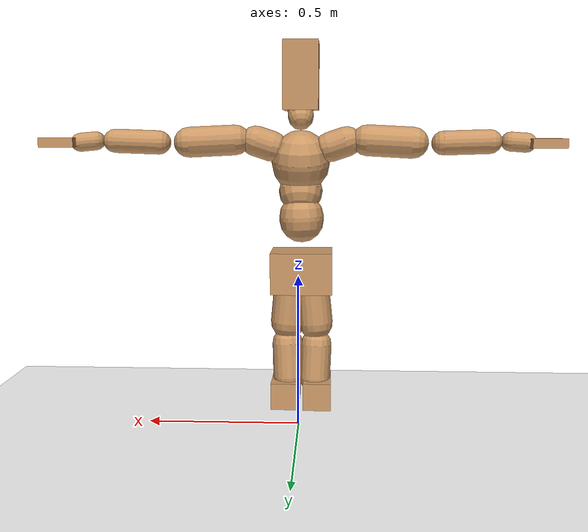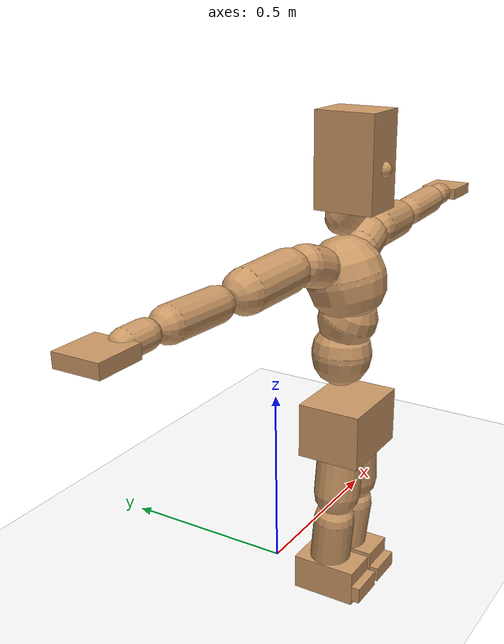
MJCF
<mujoco model="humanoid">
  <option integrator="implicitfast" />

  <visual>
    <global offwidth="1280" offheight="960" />
    <headlight active="1" ambient="0.34 0.34 0.34" diffuse="0.5 0.5 0.5" />
  </visual>

  <default>
    <joint damping="2" stiffness="2" armature="0.01" limited="true" solimplimit="0 .99 .01" />
    <geom condim="1" friction="0.7 0.005 0.0001" solimp=".99 .99 .003" solref="0.015 1" margin="0.001" rgba="0.8 0.6 .4 1" />
    <default class="smplcontact">
      <geom condim="3" friction="1. 0.005 0.0001" solref="0.015 1" solimp="0.98 0.98 0.001" priority="1" />
    </default>
    <default class="stiff_medium">
      <joint stiffness="10" />
    </default>
    <default class="stiff_medium_higher">
      <joint stiffness="50" />
    </default>
    <default class="stiff_high">
      <joint stiffness="100" />
    </default>
  </default>

  <asset>
    <texture type="skybox" builtin="gradient" rgb1="0.99 0.99 0.99" rgb2="0.608 0.828 0.892" width="100" />
    <texture builtin="flat" height="1278" mark="cross" markrgb="1 1 1" name="texgeom" random="0.01" rgb1="0.8 0.6 0.4" rgb2="0.8 0.6 0.4" type="cube" width="127" />
    <texture name="texplane" type="2d" builtin="checker" markrgb="1 1 1" rgb1="0.756 0.772 0.76" rgb2="0.6 0.6 0.6" width="100" height="100" />
    <material name="MatPlane" reflectance="0.5" texture="texplane" texrepeat="1 1" texuniform="true" />
    <material name="geom" texture="texgeom" texuniform="true" />
  </asset>

  <worldbody>
    <light name="tracking_light" pos="0 0 7" dir="0 0 -1" directional="true" cutoff="100" exponent="1" diffuse="1 1 1" specular="0.1 0.1 0.1" mode="trackcom" />
    <camera name="back" pos="0 3 2.4" xyaxes="-1 0 0 0 -1 2" mode="trackcom" />
    <camera name="side" pos="-3 0 2.4" xyaxes="0 -1 0 1 0 2" mode="trackcom" />
    <camera name="front_side" pos="-2.8 -2.8 0.8" xyaxes="0.5 -0.5 0 0.1 0.1 1" mode="trackcom" />
    <geom condim="3" name="floor" pos="0 0 0" rgba="1 1 1 1" size="100 100 .2" type="plane" material="MatPlane" />
    <body name="Pelvis" pos="-0.0018 -0.2233 0.49225" euler="90 0 0">
      <site name="Pelvis" size="0.01" />
      <freejoint name="Pelvis" />
      <geom type="box" pos="-0.0000 -0.0121 -0.0055" size="0.1069 0.0722 0.083" quat="1.0000 0.0000 0.0000 0.0000" density="3165.830099" name="Pelvis" />
      <body name="L_Hip" pos="0.03475 -0.0457 -0.0034">
        <joint name="L_Hip_x" type="hinge" pos="0 0 0" axis="1 0 0" stiffness="3.3345417441860463" range="-160.0 22.92" class="stiff_medium" damping="3.7426030205428686" armature="0.0018669335091027726"/>
        <joint name="L_Hip_y" type="hinge" pos="0 0 0" axis="0 1 0" stiffness="3.376582441860465" range="-70.0 70.0" class="stiff_medium" damping="4.004843708765265" armature="0.004750001934737157"/>
        <joint name="L_Hip_z" type="hinge" pos="0 0 0" axis="0 0 1" stiffness="3.367503488372093" range="-28.65 90.0" class="stiff_medium" damping="2.504100719628531" armature="0.0018620679787552065"/>
        <geom type="capsule" density="2040.816327" fromto="0.00345 -0.0375 -0.00045 0.0137 -0.1501 -0.0018" size="0.0615" name="L_Hip" />
        <body name="L_Knee" pos="0.01715 -0.1876 -0.00225">
          <joint name="L_Knee_x" type="hinge" pos="0 0 0" axis="1 0 0" range="-5.16 171.89" damping="2.2433259562220664" armature="0.002158215061835121" stiffness="0.7286853953488371"/>
          <joint name="L_Knee_y" type="hinge" pos="0 0 0" axis="0 1 0" range="-4.58 6.88" damping="3.446887645899606" armature="0.005422024016158547" stiffness="0.6847670265780731"/>
          <joint name="L_Knee_z" type="hinge" pos="0 0 0" axis="0 0 1" range="-6.88 4.58" damping="2.2380332629061432" armature="0.0021311895651193306" stiffness="0.7344479357696566"/>
          <geom type="capsule" density="1234.567901" fromto="-0.00135 -0.0398 -0.00435 -0.00545 -0.1592 -0.0175" size="0.0541" name="L_Knee" />
          <body name="L_Ankle" pos="-0.0068 -0.199 -0.02185">
            <joint name="L_Ankle_x" type="hinge" pos="0 0 0" axis="1 0 0" range="-45.84 45.84" class="stiff_medium" damping="3.0200432285450676" armature="0.005067033945711619" stiffness="5.0"/>
            <joint name="L_Ankle_y" type="hinge" pos="0 0 0" axis="0 1 0" range="-74.48 22.92" class="stiff_medium" damping="1.5371232923821343" armature="0.0052505511466304266" stiffness="5.0"/>
            <joint name="L_Ankle_z" type="hinge" pos="0 0 0" axis="0 0 1" range="-4.58 4.58" class="stiff_medium" damping="3.407863702828065" armature="0.006451963898362782" stiffness="5.0"/>
            <geom type="box" pos="0.01165 -0.01195 0.0121" size="0.0483 0.0464 0.085" quat="1.0000 0.0000 0.0000 0.0000" density="449.071558" name="L_Ankle" class="smplcontact" />
            <body name="L_Toe" pos="0.0132 -0.0279 0.05965">
              <joint name="L_Toe_x" type="hinge" pos="0 0 0" axis="1 0 0" range="-91.67 22.92" armature="0.007148590664291484" damping="1.1957082139294255" stiffness="1.0"/>
              <joint name="L_Toe_y" type="hinge" pos="0 0 0" axis="0 1 0" range="-4.58 4.58" armature="0.007990951927082678" damping="1.2641955487251706" stiffness="1.0"/>
              <joint name="L_Toe_z" type="hinge" pos="0 0 0" axis="0 0 1" range="-4.58 4.58" armature="0.009694161060559788" damping="1.392419553192197" stiffness="1.0"/>
              <geom type="box" pos="-0.0015 0.00275 0.0124" size="0.0478 0.02 0.0496" quat="1.0000 0.0000 0.0000 0.0000" density="423.206892" name="L_Toe" class="smplcontact" />
            </body>
          </body>
        </body>
      </body>
      <body name="R_Hip" pos="-0.03385 -0.04525 -0.00215">
        <joint name="R_Hip_x" type="hinge" pos="0 0 0" axis="1 0 0" stiffness="3.3345417441860463" range="-160.0 22.92" class="stiff_medium" damping="3.7426030205428686" armature="0.0018669335091027726"/>
        <joint name="R_Hip_y" type="hinge" pos="0 0 0" axis="0 1 0" stiffness="3.376582441860465" range="-70.0 70.0" class="stiff_medium" damping="4.004843708765265" armature="0.004750001934737157"/>
        <joint name="R_Hip_z" type="hinge" pos="0 0 0" axis="0 0 1" stiffness="3.367503488372093" range="-90.0 28.65" class="stiff_medium" damping="2.504100719628531" armature="0.0018620679787552065"/>
        <geom type="capsule" density="2040.816327" fromto="-0.00385 -0.03825 -0.0009 -0.0153 -0.15305 -0.00355" size="0.0606" name="R_Hip" />
        <body name="R_Knee" pos="-0.01915 -0.1913 -0.00445">
          <joint name="R_Knee_x" type="hinge" pos="0 0 0" axis="1 0 0" range="-5.16 171.89" damping="2.2433259562220664" armature="0.002158215061835121" stiffness="0.7286853953488371"/>
          <joint name="R_Knee_y" type="hinge" pos="0 0 0" axis="0 1 0" range="-6.88 4.58" damping="3.446887645899606" armature="0.005422024016158547" stiffness="0.6847670265780731"/>
          <joint name="R_Knee_z" type="hinge" pos="0 0 0" axis="0 0 1" range="-4.58 6.88" damping="2.2380332629061432" armature="0.0021311895651193306" stiffness="0.7344479357696566"/>
          <geom type="capsule" density="1234.567901" fromto="0.0016 -0.03985 -0.00425 0.0063 -0.15935 -0.0169" size="0.0541" name="R_Knee" />
          <body name="R_Ankle" pos="0.0079 -0.1992 -0.02115">
            <joint name="R_Ankle_x" type="hinge" pos="0 0 0" axis="1 0 0" range="-45.84 45.84" class="stiff_medium" damping="3.0200432285450676" armature="0.005067033945711619" stiffness="5.0"/>
            <joint name="R_Ankle_y" type="hinge" pos="0 0 0" axis="0 1 0" range="-22.92 74.48" class="stiff_medium" damping="1.5371232923821343" armature="0.0052505511466304266" stiffness="5.0"/>
            <joint name="R_Ankle_z" type="hinge" pos="0 0 0" axis="0 0 1" range="-4.58 4.58" class="stiff_medium" damping="3.407863702828065" armature="0.006451963898362782" stiffness="5.0"/>
            <geom type="box" pos="-0.0106 -0.0087 0.0128" size="0.0483 0.0478 0.0865" quat="1.0000 0.0000 0.0000 0.0000" density="434.700981" name="R_Ankle" class="smplcontact" />
            <body name="R_Toe" pos="-0.0127 -0.02405 0.06165">
              <joint name="R_Toe_x" type="hinge" pos="0 0 0" axis="1 0 0" range="-91.67 22.92" armature="0.007148590664291484" damping="1.1957082139294255" stiffness="1.0"/>
              <joint name="R_Toe_y" type="hinge" pos="0 0 0" axis="0 1 0" range="-4.58 4.58" armature="0.007990951927082678" damping="1.2641955487251706" stiffness="1.0"/>
              <joint name="R_Toe_z" type="hinge" pos="0 0 0" axis="0 0 1" range="-4.58 4.58" armature="0.009694161060559788" damping="1.392419553192197" stiffness="1.0"/>
              <geom type="box" pos="0.0021 0.00225 0.01135" size="0.0479 0.0216 0.0493" quat="1.0000 0.0000 0.0000 0.0000" density="407.384095" name="R_Toe" class="smplcontact" />
            </body>
          </body>
        </body>
      </body>
      <body name="Torso" pos="-0.0025 0.109 -0.0267">
        <joint name="Torso_x" type="hinge" pos="0 0 0" axis="1 0 0" range="-25.78 57.3" class="stiff_medium" damping="15.000000000000007" armature="0.01000000000000001" stiffness="10.0"/>
        <joint name="Torso_y" type="hinge" pos="0 0 0" axis="0 1 0" range="-57.3 57.3" class="stiff_high" damping="20.0" armature="0.010000000000000002" stiffness="100.0"/>
        <joint name="Torso_z" type="hinge" pos="0 0 0" axis="0 0 1" range="-34.38 34.38" class="stiff_high" damping="20.000000000000004" armature="0.010000000000000005" stiffness="100.0"/>
        <geom type="capsule" density="2040.816327" fromto="0.0025 0.0608 0.0005 0.003 0.0743 0.0006" size="0.0769" name="Torso" />
        <body name="Spine" pos="0.0055 0.1352 0.0011">
          <joint name="Spine_x" type="hinge" pos="0 0 0" axis="1 0 0" stiffness="10.0" range="-25.78 57.3" class="stiff_medium" damping="15.000000000000016" armature="0.010000000000000023"/>
          <joint name="Spine_y" type="hinge" pos="0 0 0" axis="0 1 0" stiffness="10.0" range="-57.3 57.3" class="stiff_high" damping="8.0" armature="0.010000000000000002"/>
          <joint name="Spine_z" type="hinge" pos="0 0 0" axis="0 0 1" stiffness="20.0" range="-34.38 34.38" class="stiff_high" damping="12.000000000000005" armature="0.01000000000000001"/>
          <geom type="capsule" density="2040.816327" fromto="0.0007 0.0238 0.0114 0.0008 0.0291 0.014" size="0.0755" name="Spine" />
          <body name="Chest" pos="0.0015 0.0529 0.0254">
            <joint name="Chest_x" type="hinge" pos="0 0 0" axis="1 0 0" stiffness="10.0" range="-25.78 57.3" class="stiff_medium" damping="15.00000000000001" armature="0.010000000000000014"/>
            <joint name="Chest_y" type="hinge" pos="0 0 0" axis="0 1 0" stiffness="10.0" range="-57.3 57.3" class="stiff_high" damping="8.0" armature="0.010000000000000002"/>
            <joint name="Chest_z" type="hinge" pos="0 0 0" axis="0 0 1" stiffness="20.0" range="-34.38 34.38" class="stiff_high" damping="12.000000000000004" armature="0.010000000000000005"/>
            <geom type="capsule" density="2040.816327" fromto="-0.0009 0.0682 -0.0173 -0.001 0.0833 -0.0212" size="0.1002" name="Chest" />
            <body name="Neck" pos="-0.0028 0.2139 -0.0429">
              <joint name="Neck_x" type="hinge" pos="0 0 0" axis="1 0 0" range="-28.65 57.3" class="stiff_medium_higher" damping="10.000000000000007" armature="0.010000000000000016" stiffness="50.0"/>
              <joint name="Neck_y" type="hinge" pos="0 0 0" axis="0 1 0" range="-40.11 40.11" class="stiff_medium_higher" damping="10.0" armature="0.01" stiffness="50.0"/>
              <joint name="Neck_z" type="hinge" pos="0 0 0" axis="0 0 1" range="-40.11 40.11" class="stiff_medium_higher" damping="9.999999999999998" armature="0.009999999999999998" stiffness="50.0"/>
              <geom type="capsule" density="1000" fromto="0.001 0.013 0.0103 0.0041 0.052 0.0411" size="0.0436" name="Neck" />
              <body name="Head" pos="0.0052 0.065 0.0513">
                <joint name="Head_x" type="hinge" pos="0 0 0" axis="1 0 0" range="-28.65 57.3" class="stiff_medium_higher" damping="2.000000000000001" armature="0.010000000000000009" stiffness="50.0"/>
                <joint name="Head_y" type="hinge" pos="0 0 0" axis="0 1 0" range="-40.11 40.11" class="stiff_medium_higher" damping="1.9999999999999998" armature="0.009999999999999998" stiffness="50.0"/>
                <joint name="Head_z" type="hinge" pos="0 0 0" axis="0 0 1" range="-40.11 40.11" class="stiff_medium_higher" damping="1.9999999999999993" armature="0.009999999999999993" stiffness="50.0"/>
                <geom type="box" pos="-0.0042 0.0876 -0.0116" size="0.0606 0.1154 0.076" quat="1.0000 0.0000 0.0000 0.0000" density="1018.069894" name="Head" />
                <geom type="capsule" name="nose" size="0.02 0.01" pos="0 0.07 0.05" quat="1 0 0 0" mass="0" contype="0" conaffinity="0" />
              </body>
            </body>
            <body name="L_Thorax" pos="0.0788 0.1217 -0.0341">
              <joint name="L_Thorax_x" type="hinge" pos="0 0 0" axis="1 0 0" range="-10.89 4.58" class="stiff_medium_higher" damping="19.99999999999996" armature="0.009999999999999962" stiffness="50.0"/>
              <joint name="L_Thorax_y" type="hinge" pos="0 0 0" axis="0 1 0" range="-28.65 17.19" class="stiff_medium_higher" damping="20.0" armature="0.010000000000000002" stiffness="50.0"/>
              <joint name="L_Thorax_z" type="hinge" pos="0 0 0" axis="0 0 1" range="-31.51 40.11" class="stiff_medium_higher" damping="19.999999999999996" armature="0.009999999999999998" stiffness="50.0"/>
              <geom type="capsule" density="1000" fromto="0.0182 0.0061 -0.0018 0.0728 0.0244 -0.0071" size="0.0521" name="L_Thorax" />
              <body name="L_Shoulder" pos="0.091 0.0305 -0.0089">
                <joint name="L_Shoulder_x" type="hinge" pos="0 0 0" axis="1 0 0" range="-97.4 97.4" class="stiff_medium" damping="6.000000000000035" armature="0.010000000000000118" stiffness="10.0"/>
                <joint name="L_Shoulder_y" type="hinge" pos="0 0 0" axis="0 1 0" range="-108.86 80.21" class="stiff_medium" damping="5.999999999999999" armature="0.009999999999999998" stiffness="10.0"/>
                <joint name="L_Shoulder_z" type="hinge" pos="0 0 0" axis="0 0 1" range="-97.4 85.94" class="stiff_medium" damping="6.000000000000002" armature="0.010000000000000005" stiffness="10.0"/>
                <geom type="capsule" density="1000" fromto="0.0519 -0.0026 -0.0055 0.2077 -0.0102 -0.022" size="0.0517" name="L_Shoulder" />
                <body name="L_Elbow" pos="0.2596 -0.0128 -0.0275">
                  <joint name="L_Elbow_x" type="hinge" pos="0 0 0" axis="1 0 0" range="-17.19 4.58" damping="4.999999999999957" armature="0.009999999999999828" stiffness="2.0"/>
                  <joint name="L_Elbow_y" type="hinge" pos="0 0 0" axis="0 1 0" range="-180.0 17.19" damping="5.000000000000005" armature="0.010000000000000023" stiffness="2.0"/>
                  <joint name="L_Elbow_z" type="hinge" pos="0 0 0" axis="0 0 1" range="-100.84 4.58" damping="5.000000000000002" armature="0.010000000000000009" stiffness="2.0"/>
                  <geom type="capsule" density="1000" fromto="0.0498 0.0018 -0.0002 0.1994 0.0072 -0.0009" size="0.0405" name="L_Elbow" />
                  <body name="L_Wrist" pos="0.2492 0.009 -0.0012">
                    <joint name="L_Wrist_x" type="hinge" pos="0 0 0" axis="1 0 0" range="-180.0 22.92" armature="0.009999999999999745" damping="1.9999999999999745" stiffness="2.0"/>
                    <joint name="L_Wrist_y" type="hinge" pos="0 0 0" axis="0 1 0" range="-17.19 17.19" armature="0.010000000000000061" damping="2.0000000000000058" stiffness="2.0"/>
                    <joint name="L_Wrist_z" type="hinge" pos="0 0 0" axis="0 0 1" range="-22.92 22.92" armature="0.010000000000000045" damping="2.0000000000000044" stiffness="2.0"/>
                    <geom type="capsule" density="1000" fromto="0.0168 -0.0016 -0.003 0.0672 -0.0065 -0.012" size="0.0318" name="L_Wrist" class="smplcontact" />
                    <body name="L_Hand" pos="0.084 -0.0082 -0.0149">
                      <joint name="L_Hand_x" type="hinge" pos="0 0 0" axis="1 0 0" range="-17.19 17.19" armature="0.009999999999999858" damping="1.9999999999999858" stiffness="2.0"/>
                      <joint name="L_Hand_y" type="hinge" pos="0 0 0" axis="0 1 0" range="-51.57 51.57" armature="0.010000000000000238" damping="2.0000000000000235" stiffness="2.0"/>
                      <joint name="L_Hand_z" type="hinge" pos="0 0 0" axis="0 0 1" range="-91.67 91.67" armature="0.010000000000000538" damping="2.0000000000000537" stiffness="2.0"/>
                      <geom type="box" pos="0.0493 0.001 -0.0058" size="0.0585 0.0158 0.0538" quat="1.0000 0.0000 0.0000 0.0000" density="400.552564" name="L_Hand" class="smplcontact" />
                    </body>
                  </body>
                </body>
              </body>
            </body>
            <body name="R_Thorax" pos="-0.0818 0.1188 -0.0386">
              <joint name="R_Thorax_x" type="hinge" pos="0 0 0" axis="1 0 0" range="-10.89 4.58" class="stiff_medium_higher" damping="19.99999999999996" armature="0.009999999999999962" stiffness="50.0"/>
              <joint name="R_Thorax_y" type="hinge" pos="0 0 0" axis="0 1 0" range="-17.19 28.65" class="stiff_medium_higher" damping="20.0" armature="0.010000000000000002" stiffness="50.0"/>
              <joint name="R_Thorax_z" type="hinge" pos="0 0 0" axis="0 0 1" range="-40.11 31.51" class="stiff_medium_higher" damping="19.999999999999996" armature="0.009999999999999998" stiffness="50.0"/>
              <geom type="capsule" density="1000" fromto="-0.0192 0.0065 -0.0018 -0.0768 0.026 -0.0073" size="0.0511" name="R_Thorax" />
              <body name="R_Shoulder" pos="-0.096 0.0326 -0.0091">
                <joint name="R_Shoulder_x" type="hinge" pos="0 0 0" axis="1 0 0" range="-97.4 97.4" class="stiff_medium" damping="6.000000000000035" armature="0.010000000000000118" stiffness="10.0"/>
                <joint name="R_Shoulder_y" type="hinge" pos="0 0 0" axis="0 1 0" range="-80.21 108.86" class="stiff_medium" damping="5.999999999999999" armature="0.009999999999999998" stiffness="10.0"/>
                <joint name="R_Shoulder_z" type="hinge" pos="0 0 0" axis="0 0 1" range="-85.94 97.4" class="stiff_medium" damping="6.000000000000002" armature="0.010000000000000005" stiffness="10.0"/>
                <geom type="capsule" density="1000" fromto="-0.0507 -0.0027 -0.0043 -0.203 -0.0107 -0.0171" size="0.0531" name="R_Shoulder" />
                <body name="R_Elbow" pos="-0.2537 -0.0133 -0.0214">
                  <joint name="R_Elbow_x" type="hinge" pos="0 0 0" axis="1 0 0" range="-17.19 4.58" damping="4.999999999999957" armature="0.009999999999999828" stiffness="2.0"/>
                  <joint name="R_Elbow_y" type="hinge" pos="0 0 0" axis="0 1 0" range="-17.19 180.0" damping="5.000000000000005" armature="0.010000000000000023" stiffness="2.0"/>
                  <joint name="R_Elbow_z" type="hinge" pos="0 0 0" axis="0 0 1" range="-4.58 100.84" damping="5.000000000000002" armature="0.010000000000000009" stiffness="2.0"/>
                  <geom type="capsule" density="1000" fromto="-0.0511 0.0016 -0.0011 -0.2042 0.0062 -0.0044" size="0.0408" name="R_Elbow" />
                  <body name="R_Wrist" pos="-0.2553 0.0078 -0.0056">
                    <joint name="R_Wrist_x" type="hinge" pos="0 0 0" axis="1 0 0" range="-180.0 22.92" armature="0.009999999999999745" damping="1.9999999999999745" stiffness="2.0"/>
                    <joint name="R_Wrist_y" type="hinge" pos="0 0 0" axis="0 1 0" range="-17.19 17.19" armature="0.010000000000000061" damping="2.0000000000000058" stiffness="2.0"/>
                    <joint name="R_Wrist_z" type="hinge" pos="0 0 0" axis="0 0 1" range="-22.92 22.92" armature="0.010000000000000045" damping="2.0000000000000044" stiffness="2.0"/>
                    <geom type="capsule" density="1000" fromto="-0.0169 -0.0012 -0.0021 -0.0677 -0.0049 -0.0083" size="0.0326" name="R_Wrist" class="smplcontact" />
                    <body name="R_Hand" pos="-0.0846 -0.0061 -0.0103">
                      <joint name="R_Hand_x" type="hinge" pos="0 0 0" axis="1 0 0" range="-17.19 17.19" armature="0.009999999999999858" damping="1.9999999999999858" stiffness="2.0"/>
                      <joint name="R_Hand_y" type="hinge" pos="0 0 0" axis="0 1 0" range="-51.57 51.57" armature="0.010000000000000238" damping="2.0000000000000235" stiffness="2.0"/>
                      <joint name="R_Hand_z" type="hinge" pos="0 0 0" axis="0 0 1" range="-91.67 91.67" armature="0.010000000000000538" damping="2.0000000000000537" stiffness="2.0"/>
                      <geom type="box" pos="-0.0462 -0.0009 -0.0079" size="0.0569 0.0164 0.0546" quat="1.0000 0.0000 0.0000 0.0000" density="403.679611" name="R_Hand" class="smplcontact" />
                    </body>
                  </body>
                </body>
              </body>
            </body>
          </body>
        </body>
      </body>
    </body>
  </worldbody>
  <actuator>
    <general name="L_Hip_x" joint="L_Hip_x" biastype="affine" gainprm="95.81140930921741" biasprm="-71.80094023675663 -60.021751395348836 -0.4990137360723825" ctrllimited="true" ctrlrange="-1 1" forcerange="-120.04350279069767 120.04350279069767" />
    <general name="L_Hip_y" joint="L_Hip_y" biastype="affine" gainprm="74.25492615512385" biasprm="0.0 -60.77848395348837 -0.800968741753053" ctrllimited="true" ctrlrange="-1 1" forcerange="-121.55696790697674 121.55696790697674" />
    <general name="L_Hip_z" joint="L_Hip_z" biastype="affine" gainprm="62.7618409351961" biasprm="32.45207704487383 -60.61506279069768 -0.5008201439257063" ctrllimited="true" ctrlrange="-1 1" forcerange="-121.23012558139536 121.23012558139536" />
    <general name="L_Knee_x" joint="L_Knee_x" biastype="affine" gainprm="101.32716171122915" biasprm="95.42094138442945 -65.58168558139535 -0.5608314890555166" ctrllimited="true" ctrlrange="-1 1" forcerange="-131.1633711627907 131.1633711627907" />
    <general name="L_Knee_y" joint="L_Knee_y" biastype="affine" gainprm="6.163357207238645" biasprm="1.2369739595679656 -61.62903239202658 -0.8617219114749015" ctrllimited="true" ctrlrange="-1 1" forcerange="-123.25806478405316 123.25806478405316" />
    <general name="L_Knee_z" joint="L_Knee_z" biastype="affine" gainprm="6.6105183260475755" biasprm="-1.3267183376884313 -66.1003142192691 -0.5595083157265358" ctrllimited="true" ctrlrange="-1 1" forcerange="-132.2006284385382 132.2006284385382" />
    <general name="L_Ankle_x" joint="L_Ankle_x" biastype="affine" gainprm="36.002651810139035" biasprm="0.0 -45.0 -1.0066810761816891" ctrllimited="true" ctrlrange="-1 1" forcerange="-90.0 90.0" />
    <general name="L_Ankle_y" joint="L_Ankle_y" biastype="affine" gainprm="38.24889055745574" biasprm="-20.24756465238622 -45.0 -1.0247488615880895" ctrllimited="true" ctrlrange="-1 1" forcerange="-90.0 90.0" />
    <general name="L_Ankle_z" joint="L_Ankle_z" biastype="affine" gainprm="3.5971235883603128" biasprm="0.0 -45.0 -1.135954567609355" ctrllimited="true" ctrlrange="-1 1" forcerange="-90.0 90.0" />
    <general name="L_Toe_x" joint="L_Toe_x" biastype="affine" gainprm="35.99951021748544" biasprm="-21.598449493429825 -36.0 -0.47828328557177024" ctrllimited="true" ctrlrange="-1 1" forcerange="-72.0 72.0" />
    <general name="L_Toe_y" joint="L_Toe_y" biastype="affine" gainprm="2.8776988706882505" biasprm="0.0 -36.0 -0.5056782194900683" ctrllimited="true" ctrlrange="-1 1" forcerange="-72.0 72.0" />
    <general name="L_Toe_z" joint="L_Toe_z" biastype="affine" gainprm="2.8776988706882505" biasprm="0.0 -36.0 -0.5569678212768788" ctrllimited="true" ctrlrange="-1 1" forcerange="-72.0 72.0" />
    <general name="R_Hip_x" joint="R_Hip_x" biastype="affine" gainprm="95.81140930921741" biasprm="-71.80094023675663 -60.021751395348836 -0.4990137360723825" ctrllimited="true" ctrlrange="-1 1" forcerange="-120.04350279069767 120.04350279069767" />
    <general name="R_Hip_y" joint="R_Hip_y" biastype="affine" gainprm="74.25492615512385" biasprm="0.0 -60.77848395348837 -0.800968741753053" ctrllimited="true" ctrlrange="-1 1" forcerange="-121.55696790697674 121.55696790697674" />
    <general name="R_Hip_z" joint="R_Hip_z" biastype="affine" gainprm="62.7618409351961" biasprm="-32.45207704487383 -60.61506279069768 -0.5008201439257063" ctrllimited="true" ctrlrange="-1 1" forcerange="-121.23012558139536 121.23012558139536" />
    <general name="R_Knee_x" joint="R_Knee_x" biastype="affine" gainprm="101.32716171122915" biasprm="95.42094138442945 -65.58168558139535 -0.5608314890555166" ctrllimited="true" ctrlrange="-1 1" forcerange="-131.1633711627907 131.1633711627907" />
    <general name="R_Knee_y" joint="R_Knee_y" biastype="affine" gainprm="6.163357207238645" biasprm="-1.2369739595679656 -61.62903239202658 -0.8617219114749015" ctrllimited="true" ctrlrange="-1 1" forcerange="-123.25806478405316 123.25806478405316" />
    <general name="R_Knee_z" joint="R_Knee_z" biastype="affine" gainprm="6.6105183260475755" biasprm="1.3267183376884313 -66.1003142192691 -0.5595083157265358" ctrllimited="true" ctrlrange="-1 1" forcerange="-132.2006284385382 132.2006284385382" />
    <general name="R_Ankle_x" joint="R_Ankle_x" biastype="affine" gainprm="36.002651810139035" biasprm="0.0 -45.0 -1.0066810761816891" ctrllimited="true" ctrlrange="-1 1" forcerange="-90.0 90.0" />
    <general name="R_Ankle_y" joint="R_Ankle_y" biastype="affine" gainprm="38.24889055745574" biasprm="20.24756465238622 -45.0 -1.0247488615880895" ctrllimited="true" ctrlrange="-1 1" forcerange="-90.0 90.0" />
    <general name="R_Ankle_z" joint="R_Ankle_z" biastype="affine" gainprm="3.5971235883603128" biasprm="0.0 -45.0 -1.135954567609355" ctrllimited="true" ctrlrange="-1 1" forcerange="-90.0 90.0" />
    <general name="R_Toe_x" joint="R_Toe_x" biastype="affine" gainprm="35.99951021748544" biasprm="-21.598449493429825 -36.0 -0.47828328557177024" ctrllimited="true" ctrlrange="-1 1" forcerange="-72.0 72.0" />
    <general name="R_Toe_y" joint="R_Toe_y" biastype="affine" gainprm="2.8776988706882505" biasprm="0.0 -36.0 -0.5056782194900683" ctrllimited="true" ctrlrange="-1 1" forcerange="-72.0 72.0" />
    <general name="R_Toe_z" joint="R_Toe_z" biastype="affine" gainprm="2.8776988706882505" biasprm="0.0 -36.0 -0.5569678212768788" ctrllimited="true" ctrlrange="-1 1" forcerange="-72.0 72.0" />
    <general name="Torso_x" joint="Torso_x" biastype="affine" gainprm="174.00234510682668" biasprm="66.0153336274335 -240.0 -4.000000000000002" ctrllimited="true" ctrlrange="-1 1" forcerange="-360.0 360.0" />
    <general name="Torso_y" joint="Torso_y" biastype="affine" gainprm="240.0176787342602" biasprm="0.0 -240.0 -4.0" ctrllimited="true" ctrlrange="-1 1" forcerange="-360.0 360.0" />
    <general name="Torso_z" joint="Torso_z" biastype="affine" gainprm="144.01060724055614" biasprm="0.0 -240.0 -4.000000000000001" ctrllimited="true" ctrlrange="-1 1" forcerange="-360.0 360.0" />
    <general name="Spine_x" joint="Spine_x" biastype="affine" gainprm="174.00234510682668" biasprm="66.0153336274335 -240.0 -4.000000000000004" ctrllimited="true" ctrlrange="-1 1" forcerange="-360.0 360.0" />
    <general name="Spine_y" joint="Spine_y" biastype="affine" gainprm="240.0176787342602" biasprm="0.0 -240.0 -4.0" ctrllimited="true" ctrlrange="-1 1" forcerange="-360.0 360.0" />
    <general name="Spine_z" joint="Spine_z" biastype="affine" gainprm="144.01060724055614" biasprm="0.0 -240.0 -4.000000000000002" ctrllimited="true" ctrlrange="-1 1" forcerange="-360.0 360.0" />
    <general name="Chest_x" joint="Chest_x" biastype="affine" gainprm="174.00234510682668" biasprm="66.0153336274335 -240.0 -4.000000000000003" ctrllimited="true" ctrlrange="-1 1" forcerange="-360.0 360.0" />
    <general name="Chest_y" joint="Chest_y" biastype="affine" gainprm="240.0176787342602" biasprm="0.0 -240.0 -4.0" ctrllimited="true" ctrlrange="-1 1" forcerange="-360.0 360.0" />
    <general name="Chest_z" joint="Chest_z" biastype="affine" gainprm="144.01060724055614" biasprm="0.0 -240.0 -4.000000000000001" ctrllimited="true" ctrlrange="-1 1" forcerange="-360.0 360.0" />
    <general name="Neck_x" joint="Neck_x" biastype="affine" gainprm="27.00198885760427" biasprm="9.000662952534757 -36.0 -0.8000000000000006" ctrllimited="true" ctrlrange="-1 1" forcerange="-72.0 72.0" />
    <general name="Neck_y" joint="Neck_y" biastype="affine" gainprm="25.20185626709732" biasprm="0.0 -36.0 -0.8" ctrllimited="true" ctrlrange="-1 1" forcerange="-72.0 72.0" />
    <general name="Neck_z" joint="Neck_z" biastype="affine" gainprm="25.20185626709732" biasprm="0.0 -36.0 -0.7999999999999999" ctrllimited="true" ctrlrange="-1 1" forcerange="-72.0 72.0" />
    <general name="Head_x" joint="Head_x" biastype="affine" gainprm="18.001325905069514" biasprm="6.000441968356505 -24.0 -0.8000000000000004" ctrllimited="true" ctrlrange="-1 1" forcerange="-48.0 48.0" />
    <general name="Head_y" joint="Head_y" biastype="affine" gainprm="16.801237511398213" biasprm="0.0 -24.0 -0.7999999999999999" ctrllimited="true" ctrlrange="-1 1" forcerange="-48.0 48.0" />
    <general name="Head_z" joint="Head_z" biastype="affine" gainprm="16.801237511398213" biasprm="0.0 -24.0 -0.7999999999999998" ctrllimited="true" ctrlrange="-1 1" forcerange="-48.0 48.0" />
    <general name="L_Thorax_x" joint="L_Thorax_x" biastype="affine" gainprm="16.200146117011364" biasprm="-6.6078165480505335 -120.0 -1.599999999999997" ctrllimited="true" ctrlrange="-1 1" forcerange="-240.0 240.0" />
    <general name="L_Thorax_y" joint="L_Thorax_y" biastype="affine" gainprm="48.00353574685204" biasprm="-12.00088393671301 -120.0 -1.6" ctrllimited="true" ctrlrange="-1 1" forcerange="-240.0 240.0" />
    <general name="L_Thorax_z" joint="L_Thorax_z" biastype="affine" gainprm="75.00028861670033" biasprm="9.00589894029074 -120.0 -1.5999999999999999" ctrllimited="true" ctrlrange="-1 1" forcerange="-240.0 240.0" />
    <general name="L_Shoulder_x" joint="L_Shoulder_x" biastype="affine" gainprm="81.5976331892389" biasprm="0.0 -48.0 -1.6000000000000094" ctrllimited="true" ctrlrange="-1 1" forcerange="-96.0 96.0" />
    <general name="L_Shoulder_y" joint="L_Shoulder_y" biastype="affine" gainprm="79.19745640189629" biasprm="-12.00088393671301 -48.0 -1.5999999999999999" ctrllimited="true" ctrlrange="-1 1" forcerange="-96.0 96.0" />
    <general name="L_Shoulder_z" joint="L_Shoulder_z" biastype="affine" gainprm="76.79727961455369" biasprm="-4.800353574685214 -48.0 -1.6000000000000005" ctrllimited="true" ctrlrange="-1 1" forcerange="-96.0 96.0" />
    <general name="L_Elbow_x" joint="L_Elbow_x" biastype="affine" gainprm="13.67849441372996" biasprm="-7.923096672353461 -72.0 -0.7999999999999932" ctrllimited="true" ctrlrange="-1 1" forcerange="-144.0 144.0" />
    <general name="L_Elbow_y" joint="L_Elbow_y" biastype="affine" gainprm="123.89813107227425" biasprm="-102.29653998619085 -72.0 -0.8000000000000009" ctrllimited="true" ctrlrange="-1 1" forcerange="-144.0 144.0" />
    <general name="L_Elbow_z" joint="L_Elbow_z" biastype="affine" gainprm="66.23733950828719" biasprm="-60.4819417669107 -72.0 -0.8000000000000004" ctrllimited="true" ctrlrange="-1 1" forcerange="-144.0 144.0" />
    <general name="L_Wrist_x" joint="L_Wrist_x" biastype="affine" gainprm="21.24973270888136" biasprm="-16.449379134196157 -12.0 -0.7999999999999898" ctrllimited="true" ctrlrange="-1 1" forcerange="-24.0 24.0" />
    <general name="L_Wrist_y" joint="L_Wrist_y" biastype="affine" gainprm="3.6002651810139037" biasprm="0.0 -12.0 -0.8000000000000024" ctrllimited="true" ctrlrange="-1 1" forcerange="-24.0 24.0" />
    <general name="L_Wrist_z" joint="L_Wrist_z" biastype="affine" gainprm="4.800353574685205" biasprm="0.0 -12.0 -0.8000000000000018" ctrllimited="true" ctrlrange="-1 1" forcerange="-24.0 24.0" />
    <general name="L_Hand_x" joint="L_Hand_x" biastype="affine" gainprm="3.6002651810139037" biasprm="0.0 -12.0 -0.7999999999999944" ctrllimited="true" ctrlrange="-1 1" forcerange="-24.0 24.0" />
    <general name="L_Hand_y" joint="L_Hand_y" biastype="affine" gainprm="10.800795543041708" biasprm="0.0 -12.0 -0.8000000000000095" ctrllimited="true" ctrlrange="-1 1" forcerange="-24.0 24.0" />
    <general name="L_Hand_z" joint="L_Hand_z" biastype="affine" gainprm="19.199319903638422" biasprm="0.0 -12.0 -0.8000000000000216" ctrllimited="true" ctrlrange="-1 1" forcerange="-24.0 24.0" />
    <general name="R_Thorax_x" joint="R_Thorax_x" biastype="affine" gainprm="16.200146117011364" biasprm="-6.6078165480505335 -120.0 -1.599999999999997" ctrllimited="true" ctrlrange="-1 1" forcerange="-240.0 240.0" />
    <general name="R_Thorax_y" joint="R_Thorax_y" biastype="affine" gainprm="48.00353574685204" biasprm="12.000883936713002 -120.0 -1.6" ctrllimited="true" ctrlrange="-1 1" forcerange="-240.0 240.0" />
    <general name="R_Thorax_z" joint="R_Thorax_z" biastype="affine" gainprm="75.00028861670033" biasprm="-9.00589894029074 -120.0 -1.5999999999999999" ctrllimited="true" ctrlrange="-1 1" forcerange="-240.0 240.0" />
    <general name="R_Shoulder_x" joint="R_Shoulder_x" biastype="affine" gainprm="81.5976331892389" biasprm="0.0 -48.0 -1.6000000000000094" ctrllimited="true" ctrlrange="-1 1" forcerange="-96.0 96.0" />
    <general name="R_Shoulder_y" joint="R_Shoulder_y" biastype="affine" gainprm="79.19745640189629" biasprm="12.00088393671301 -48.0 -1.5999999999999999" ctrllimited="true" ctrlrange="-1 1" forcerange="-96.0 96.0" />
    <general name="R_Shoulder_z" joint="R_Shoulder_z" biastype="affine" gainprm="76.79727961455369" biasprm="4.800353574685204 -48.0 -1.6000000000000005" ctrllimited="true" ctrlrange="-1 1" forcerange="-96.0 96.0" />
    <general name="R_Elbow_x" joint="R_Elbow_x" biastype="affine" gainprm="13.67849441372996" biasprm="-7.923096672353461 -72.0 -0.7999999999999932" ctrllimited="true" ctrlrange="-1 1" forcerange="-144.0 144.0" />
    <general name="R_Elbow_y" joint="R_Elbow_y" biastype="affine" gainprm="123.89813107227425" biasprm="102.29653998619085 -72.0 -0.8000000000000009" ctrllimited="true" ctrlrange="-1 1" forcerange="-144.0 144.0" />
    <general name="R_Elbow_z" joint="R_Elbow_z" biastype="affine" gainprm="66.23733950828719" biasprm="60.481941766910694 -72.0 -0.8000000000000004" ctrllimited="true" ctrlrange="-1 1" forcerange="-144.0 144.0" />
    <general name="R_Wrist_x" joint="R_Wrist_x" biastype="affine" gainprm="21.24973270888136" biasprm="-16.449379134196157 -12.0 -0.7999999999999898" ctrllimited="true" ctrlrange="-1 1" forcerange="-24.0 24.0" />
    <general name="R_Wrist_y" joint="R_Wrist_y" biastype="affine" gainprm="3.6002651810139037" biasprm="0.0 -12.0 -0.8000000000000024" ctrllimited="true" ctrlrange="-1 1" forcerange="-24.0 24.0" />
    <general name="R_Wrist_z" joint="R_Wrist_z" biastype="affine" gainprm="4.800353574685205" biasprm="0.0 -12.0 -0.8000000000000018" ctrllimited="true" ctrlrange="-1 1" forcerange="-24.0 24.0" />
    <general name="R_Hand_x" joint="R_Hand_x" biastype="affine" gainprm="3.6002651810139037" biasprm="0.0 -12.0 -0.7999999999999944" ctrllimited="true" ctrlrange="-1 1" forcerange="-24.0 24.0" />
    <general name="R_Hand_y" joint="R_Hand_y" biastype="affine" gainprm="10.800795543041708" biasprm="0.0 -12.0 -0.8000000000000095" ctrllimited="true" ctrlrange="-1 1" forcerange="-24.0 24.0" />
    <general name="R_Hand_z" joint="R_Hand_z" biastype="affine" gainprm="19.199319903638422" biasprm="0.0 -12.0 -0.8000000000000216" ctrllimited="true" ctrlrange="-1 1" forcerange="-24.0 24.0" />
  </actuator>
  <contact>
    <exclude body1="Torso" body2="Chest" />
    <exclude body1="Head" body2="Chest" />
    <exclude body1="R_Knee" body2="R_Toe" />
    <exclude body1="R_Knee" body2="L_Ankle" />
    <exclude body1="R_Knee" body2="L_Toe" />
    <exclude body1="L_Knee" body2="L_Toe" />
    <exclude body1="L_Knee" body2="R_Ankle" />
    <exclude body1="L_Knee" body2="R_Toe" />
    <exclude body1="L_Shoulder" body2="Chest" />
    <exclude body1="R_Shoulder" body2="Chest" />
  </contact>
  <sensor>
    <framelinvel name="sensor_Pelvis_framelinvel" objtype="xbody" objname="Pelvis" />
    <framelinvel name="sensor_L_Hip_framelinvel" objtype="xbody" objname="L_Hip" />
    <framelinvel name="sensor_L_Knee_framelinvel" objtype="xbody" objname="L_Knee" />
    <framelinvel name="sensor_L_Ankle_framelinvel" objtype="xbody" objname="L_Ankle" />
    <framelinvel name="sensor_L_Toe_framelinvel" objtype="xbody" objname="L_Toe" />
    <framelinvel name="sensor_R_Hip_framelinvel" objtype="xbody" objname="R_Hip" />
    <framelinvel name="sensor_R_Knee_framelinvel" objtype="xbody" objname="R_Knee" />
    <framelinvel name="sensor_R_Ankle_framelinvel" objtype="xbody" objname="R_Ankle" />
    <framelinvel name="sensor_R_Toe_framelinvel" objtype="xbody" objname="R_Toe" />
    <framelinvel name="sensor_Torso_framelinvel" objtype="xbody" objname="Torso" />
    <framelinvel name="sensor_Spine_framelinvel" objtype="xbody" objname="Spine" />
    <framelinvel name="sensor_Chest_framelinvel" objtype="xbody" objname="Chest" />
    <framelinvel name="sensor_Neck_framelinvel" objtype="xbody" objname="Neck" />
    <framelinvel name="sensor_Head_framelinvel" objtype="xbody" objname="Head" />
    <framelinvel name="sensor_L_Thorax_framelinvel" objtype="xbody" objname="L_Thorax" />
    <framelinvel name="sensor_L_Shoulder_framelinvel" objtype="xbody" objname="L_Shoulder" />
    <framelinvel name="sensor_L_Elbow_framelinvel" objtype="xbody" objname="L_Elbow" />
    <framelinvel name="sensor_L_Wrist_framelinvel" objtype="xbody" objname="L_Wrist" />
    <framelinvel name="sensor_L_Hand_framelinvel" objtype="xbody" objname="L_Hand" />
    <framelinvel name="sensor_R_Thorax_framelinvel" objtype="xbody" objname="R_Thorax" />
    <framelinvel name="sensor_R_Shoulder_framelinvel" objtype="xbody" objname="R_Shoulder" />
    <framelinvel name="sensor_R_Elbow_framelinvel" objtype="xbody" objname="R_Elbow" />
    <framelinvel name="sensor_R_Wrist_framelinvel" objtype="xbody" objname="R_Wrist" />
    <framelinvel name="sensor_R_Hand_framelinvel" objtype="xbody" objname="R_Hand" />
    <frameangvel name="sensor_Pelvis_frameangvel" objtype="xbody" objname="Pelvis" />
    <frameangvel name="sensor_L_Hip_frameangvel" objtype="xbody" objname="L_Hip" />
    <frameangvel name="sensor_L_Knee_frameangvel" objtype="xbody" objname="L_Knee" />
    <frameangvel name="sensor_L_Ankle_frameangvel" objtype="xbody" objname="L_Ankle" />
    <frameangvel name="sensor_L_Toe_frameangvel" objtype="xbody" objname="L_Toe" />
    <frameangvel name="sensor_R_Hip_frameangvel" objtype="xbody" objname="R_Hip" />
    <frameangvel name="sensor_R_Knee_frameangvel" objtype="xbody" objname="R_Knee" />
    <frameangvel name="sensor_R_Ankle_frameangvel" objtype="xbody" objname="R_Ankle" />
    <frameangvel name="sensor_R_Toe_frameangvel" objtype="xbody" objname="R_Toe" />
    <frameangvel name="sensor_Torso_frameangvel" objtype="xbody" objname="Torso" />
    <frameangvel name="sensor_Spine_frameangvel" objtype="xbody" objname="Spine" />
    <frameangvel name="sensor_Chest_frameangvel" objtype="xbody" objname="Chest" />
    <frameangvel name="sensor_Neck_frameangvel" objtype="xbody" objname="Neck" />
    <frameangvel name="sensor_Head_frameangvel" objtype="xbody" objname="Head" />
    <frameangvel name="sensor_L_Thorax_frameangvel" objtype="xbody" objname="L_Thorax" />
    <frameangvel name="sensor_L_Shoulder_frameangvel" objtype="xbody" objname="L_Shoulder" />
    <frameangvel name="sensor_L_Elbow_frameangvel" objtype="xbody" objname="L_Elbow" />
    <frameangvel name="sensor_L_Wrist_frameangvel" objtype="xbody" objname="L_Wrist" />
    <frameangvel name="sensor_L_Hand_frameangvel" objtype="xbody" objname="L_Hand" />
    <frameangvel name="sensor_R_Thorax_frameangvel" objtype="xbody" objname="R_Thorax" />
    <frameangvel name="sensor_R_Shoulder_frameangvel" objtype="xbody" objname="R_Shoulder" />
    <frameangvel name="sensor_R_Elbow_frameangvel" objtype="xbody" objname="R_Elbow" />
    <frameangvel name="sensor_R_Wrist_frameangvel" objtype="xbody" objname="R_Wrist" />
    <frameangvel name="sensor_R_Hand_frameangvel" objtype="xbody" objname="R_Hand" />
    <subtreelinvel name="Chest_subtreelinvel" body="Chest" />
    <gyro name="Pelvis_gyro" site="Pelvis" />
  </sensor>
</mujoco>
